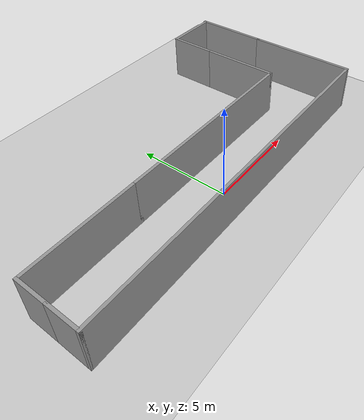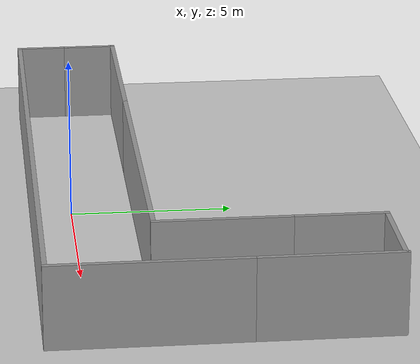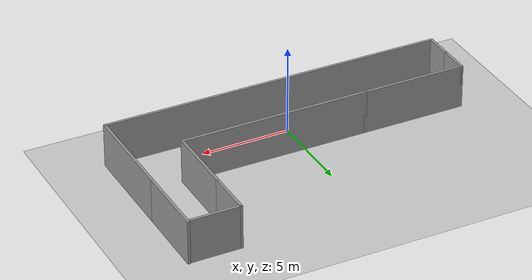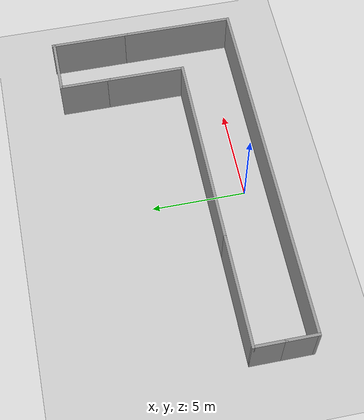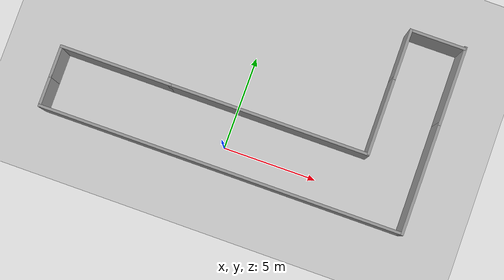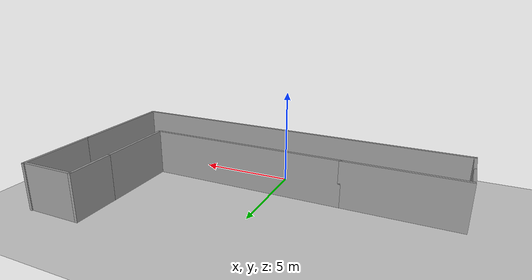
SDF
<sdf version="1.7">
 <world name="default">
  <scene><ambient>0.4 0.4 0.4 1</ambient><background>0.7 0.7 0.7 1</background><shadows>1</shadows></scene>
  <light name="sun" type="directional">
   <pose>0 0 10 0 -0 0</pose>
   <diffuse>0.8 0.8 0.8 1</diffuse>
   <specular>0.2 0.2 0.2 1</specular>
   <attenuation>
    <range>1000</range>
    <constant>0.9</constant>
    <linear>0.01</linear>
    <quadratic>0.001</quadratic>
   </attenuation>
   <direction>-0.5 0.1 -0.9</direction>
   <spot><inner_angle>0</inner_angle><outer_angle>0</outer_angle><falloff>0</falloff></spot>
  </light>
  <model name="ground_plane">
   <static>1</static>
   <link name="link">
    <collision name="collision">
     <geometry><plane><normal>0 0 1</normal><size>100 100</size></plane></geometry>
     <surface><friction><ode><mu>100</mu><mu2>50</mu2></ode></friction></surface>
    </collision>
    <visual name="visual">
     <cast_shadows>0</cast_shadows>
     <geometry><plane><normal>0 0 1</normal><size>100 100</size></plane></geometry>
     <material>
      <script><uri>file://media/materials/scripts/gazebo.material</uri><name>Gazebo/Grey</name></script>
     </material>
    </visual>
   </link>
  </model>
  <physics type="ode">
   <real_time_update_rate>0</real_time_update_rate>
   <max_step_size>0.001</max_step_size>
   <real_time_factor>1</real_time_factor>
   <ode>
    <solver>
     <type>quick</type>
     <iters>150</iters>
     <precon_iters>0</precon_iters>
     <sor>1.4</sor>
     <use_dynamic_moi_rescaling>1</use_dynamic_moi_rescaling>
    </solver>
    <constraints>
     <cfm>1e-05</cfm>
     <erp>0.2</erp>
     <contact_max_correcting_vel>2000</contact_max_correcting_vel>
     <contact_surface_layer>0.01</contact_surface_layer>
    </constraints>
   </ode>
  </physics>
  <gravity>0 0 -9.8</gravity>
  <magnetic_field>6e-06 2.3e-05 -4.2e-05</magnetic_field>
  <atmosphere type="adiabatic"/>
  <spherical_coordinates>
   <surface_model>EARTH_WGS84</surface_model>
   <latitude_deg>0</latitude_deg>
   <longitude_deg>0</longitude_deg>
   <elevation>0</elevation>
   <heading_deg>0</heading_deg>
  </spherical_coordinates>
  <plugin name="gazebo_occupancy_map" filename="libgazebo_2Dmap_plugin.so">
   <map_resolution>0.02</map_resolution>
   <map_height>0.7</map_height>
   <map_size_x>20</map_size_x>
   <map_size_y>20</map_size_y>
   <init_robot_x>0</init_robot_x>
   <init_robot_y>0</init_robot_y>
  </plugin>
  <model name="long_hallway">
   <pose>0.255001 3.745 0 0 -0 0</pose>
   <link name="Wall_0">
    <collision name="Wall_0_Collision">
     <geometry><box><size>19.5 0.15 2.5</size></box></geometry>
     <pose>0 0 1.25 0 -0 0</pose>
    </collision>
    <visual name="Wall_0_Visual">
     <pose>0 0 1.25 0 -0 0</pose>
     <geometry><box><size>19.5 0.15 2.5</size></box></geometry>
     <material>
      <script><uri>file://media/materials/scripts/gazebo.material</uri><name>Gazebo/Grey</name></script>
      <ambient>1 1 1 1</ambient>
     </material>
     <meta><layer>0</layer></meta>
    </visual>
    <pose>-1e-06 -4.975 0 0 -0 0</pose>
   </link>
   <link name="Wall_10">
    <collision name="Wall_10_Collision">
     <geometry><box><size>4.25 0.15 2.5</size></box></geometry>
     <pose>0 0 1.25 0 -0 0</pose>
    </collision>
    <visual name="Wall_10_Visual">
     <pose>0 0 1.25 0 -0 0</pose>
     <geometry><box><size>4.25 0.15 2.5</size></box></geometry>
     <material>
      <script><uri>file://media/materials/scripts/gazebo.material</uri><name>Gazebo/Grey</name></script>
      <ambient>1 1 1 1</ambient>
     </material>
     <meta><layer>0</layer></meta>
    </visual>
    <pose>6.775 0.275 0 0 -0 1.5708</pose>
   </link>
   <link name="Wall_11">
    <collision name="Wall_11_Collision">
     <geometry><box><size>2.75 0.15 2.5</size></box></geometry>
     <pose>0 0 1.25 0 -0 0</pose>
    </collision>
    <visual name="Wall_11_Visual">
     <pose>0 0 1.25 0 -0 0</pose>
     <geometry><box><size>2.75 0.15 2.5</size></box></geometry>
     <material>
      <script><uri>file://media/materials/scripts/gazebo.material</uri><name>Gazebo/Grey</name></script>
      <ambient>1 1 1 1</ambient>
     </material>
     <meta><layer>0</layer></meta>
    </visual>
    <pose>6.775 3.625 0 0 -0 1.5708</pose>
   </link>
   <link name="Wall_12">
    <collision name="Wall_12_Collision">
     <geometry><box><size>3 0.15 2.5</size></box></geometry>
     <pose>0 0 1.25 0 -0 0</pose>
    </collision>
    <visual name="Wall_12_Visual">
     <pose>0 0 1.25 0 -0 0</pose>
     <geometry><box><size>3 0.15 2.5</size></box></geometry>
     <material>
      <script><uri>file://media/materials/scripts/gazebo.material</uri><name>Gazebo/Grey</name></script>
      <ambient>1 1 1 1</ambient>
     </material>
     <meta><layer>0</layer></meta>
    </visual>
    <pose>8.2 4.925 0 0 -0 0</pose>
   </link>
   <link name="Wall_2">
    <collision name="Wall_2_Collision">
     <geometry><box><size>1.75 0.15 2.5</size></box></geometry>
     <pose>0 0 1.25 0 -0 0</pose>
    </collision>
    <visual name="Wall_2_Visual">
     <pose>0 0 1.25 0 -0 0</pose>
     <geometry><box><size>1.75 0.15 2.5</size></box></geometry>
     <material>
      <script><uri>file://media/materials/scripts/gazebo.material</uri><name>Gazebo/Grey</name></script>
      <ambient>1 1 1 1</ambient>
     </material>
     <meta><layer>0</layer></meta>
    </visual>
    <pose>-9.675 -4.175 0 0 -0 1.5708</pose>
   </link>
   <link name="Wall_3">
    <collision name="Wall_3_Collision">
     <geometry><box><size>1.75 0.15 2.5</size></box></geometry>
     <pose>0 0 1.25 0 -0 0</pose>
    </collision>
    <visual name="Wall_3_Visual">
     <pose>0 0 1.25 0 -0 0</pose>
     <geometry><box><size>1.75 0.15 2.5</size></box></geometry>
     <material>
      <script><uri>file://media/materials/scripts/gazebo.material</uri><name>Gazebo/Grey</name></script>
      <ambient>1 1 1 1</ambient>
     </material>
     <meta><layer>0</layer></meta>
    </visual>
    <pose>-9.675 -2.575 0 0 -0 1.5708</pose>
   </link>
   <link name="Wall_4">
    <collision name="Wall_4_Collision">
     <geometry><box><size>6 0.15 2.5</size></box></geometry>
     <pose>0 0 1.25 0 -0 0</pose>
    </collision>
    <visual name="Wall_4_Visual">
     <pose>0 0 1.25 0 -0 0</pose>
     <geometry><box><size>6 0.15 2.5</size></box></geometry>
     <material>
      <script><uri>file://media/materials/scripts/gazebo.material</uri><name>Gazebo/Grey</name></script>
      <ambient>1 1 1 1</ambient>
     </material>
     <meta><layer>0</layer></meta>
    </visual>
    <pose>-6.75 -1.775 0 0 -0 0</pose>
   </link>
   <link name="Wall_5">
    <collision name="Wall_5_Collision">
     <geometry><box><size>10.75 0.15 2.5</size></box></geometry>
     <pose>0 0 1.25 0 -0 0</pose>
    </collision>
    <visual name="Wall_5_Visual">
     <pose>0 0 1.25 0 -0 0</pose>
     <geometry><box><size>10.75 0.15 2.5</size></box></geometry>
     <material>
      <script><uri>file://media/materials/scripts/gazebo.material</uri><name>Gazebo/Grey</name></script>
      <ambient>1 1 1 1</ambient>
     </material>
     <meta><layer>0</layer></meta>
    </visual>
    <pose>1.475 -1.775 0 0 -0 0</pose>
   </link>
   <link name="Wall_7">
    <collision name="Wall_7_Collision">
     <geometry><box><size>6 0.15 2.5</size></box></geometry>
     <pose>0 0 1.25 0 -0 0</pose>
    </collision>
    <visual name="Wall_7_Visual">
     <pose>0 0 1.25 0 -0 0</pose>
     <geometry><box><size>6 0.15 2.5</size></box></geometry>
     <material>
      <script><uri>file://media/materials/scripts/gazebo.material</uri><name>Gazebo/Grey</name></script>
      <ambient>1 1 1 1</ambient>
     </material>
     <meta><layer>0</layer></meta>
    </visual>
    <pose>9.675 -2.05 0 0 -0 1.5708</pose>
   </link>
   <link name="Wall_8">
    <collision name="Wall_8_Collision">
     <geometry><box><size>4.25 0.15 2.5</size></box></geometry>
     <pose>0 0 1.25 0 -0 0</pose>
    </collision>
    <visual name="Wall_8_Visual">
     <pose>0 0 1.25 0 -0 0</pose>
     <geometry><box><size>4.25 0.15 2.5</size></box></geometry>
     <material>
      <script><uri>file://media/materials/scripts/gazebo.material</uri><name>Gazebo/Grey</name></script>
      <ambient>1 1 1 1</ambient>
     </material>
     <meta><layer>0</layer></meta>
    </visual>
    <pose>9.675 2.925 0 0 -0 1.5708</pose>
   </link>
   <static>1</static>
  </model>
  <plugin name="gazebo_occupancy_map" filename="libgazebo_2Dmap_plugin.so">
   <map_resolution>0.02</map_resolution>
   <map_height>0.7</map_height>
   <map_size_x>20</map_size_x>
   <map_size_y>20</map_size_y>
   <init_robot_x>0</init_robot_x>
   <init_robot_y>0</init_robot_y>
  </plugin>
 </world>
</sdf>
